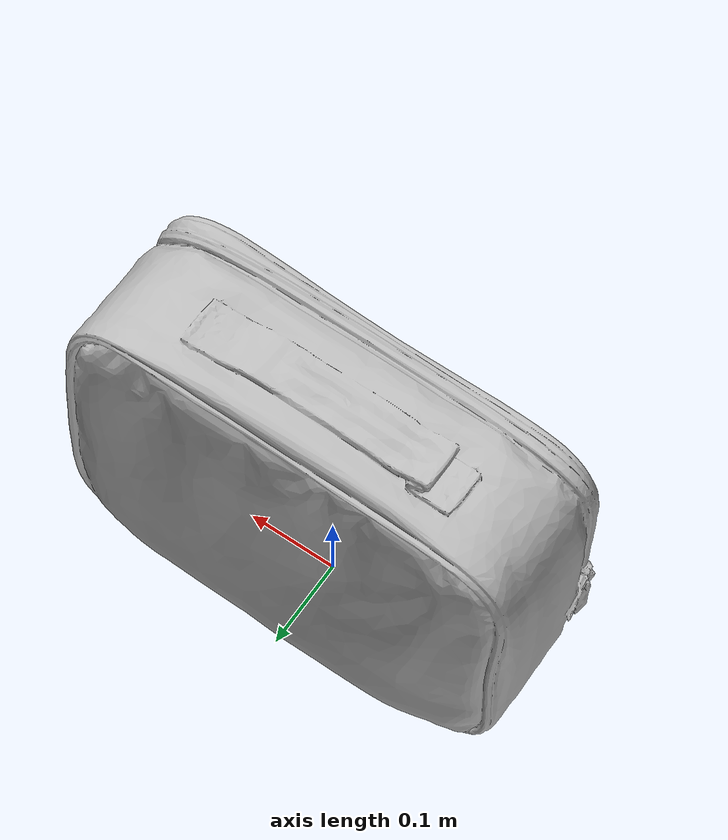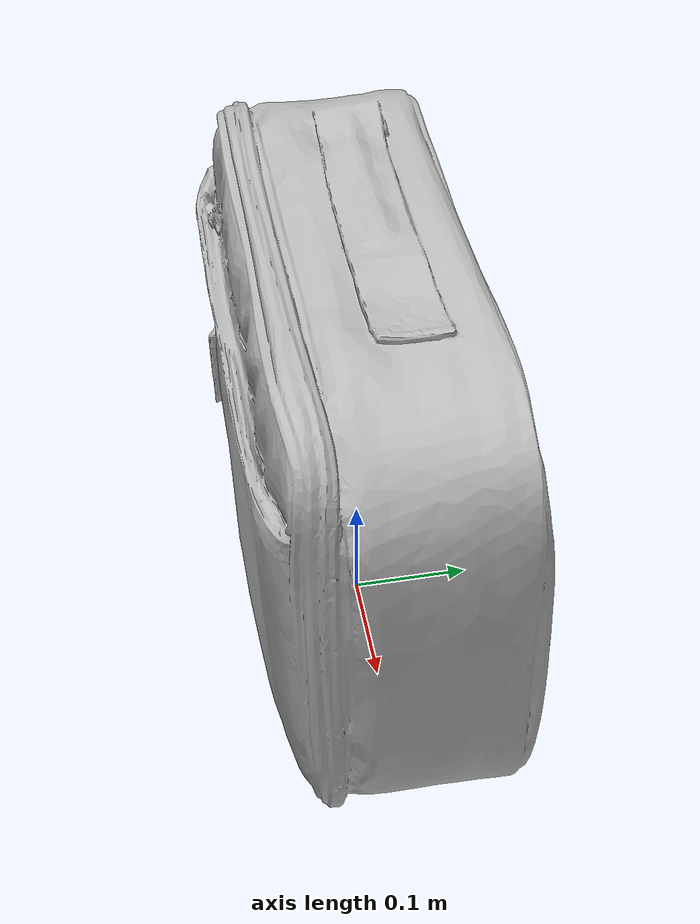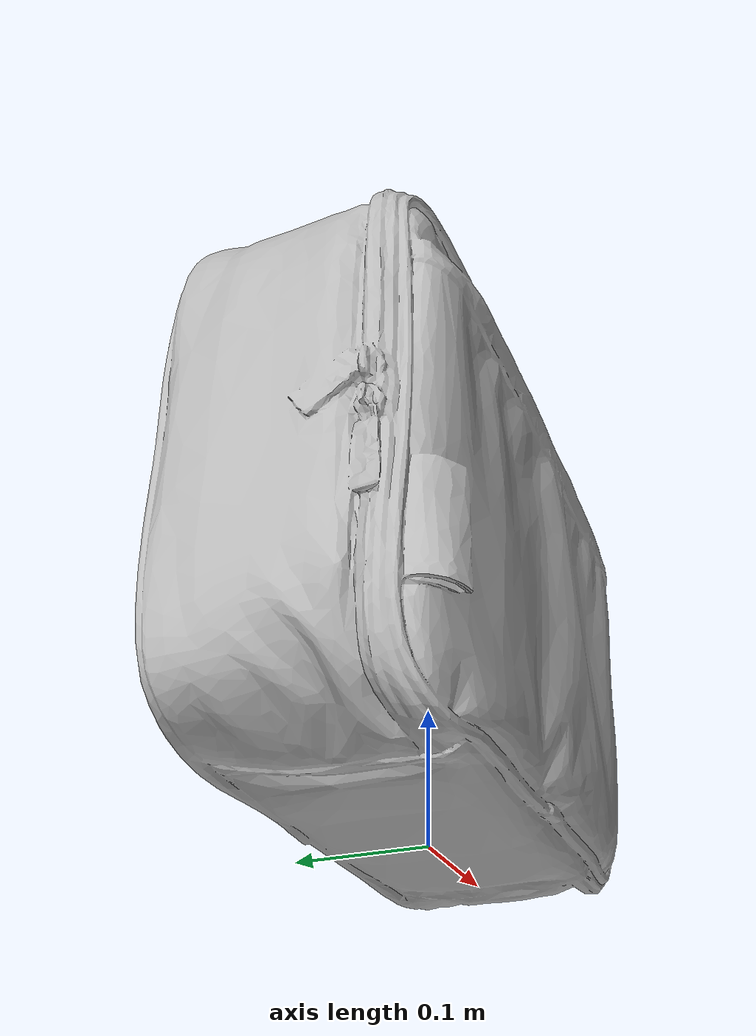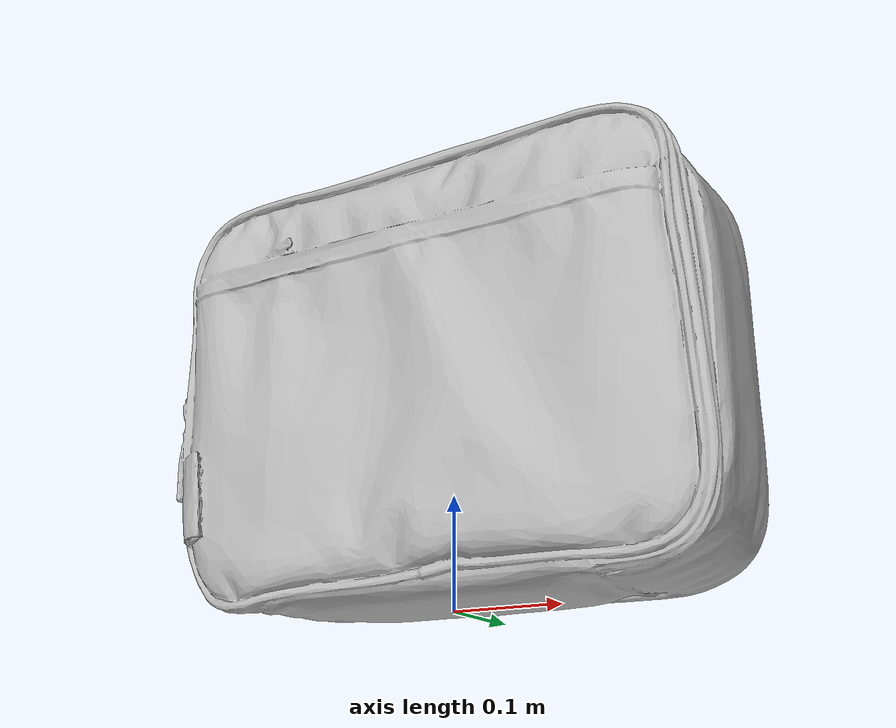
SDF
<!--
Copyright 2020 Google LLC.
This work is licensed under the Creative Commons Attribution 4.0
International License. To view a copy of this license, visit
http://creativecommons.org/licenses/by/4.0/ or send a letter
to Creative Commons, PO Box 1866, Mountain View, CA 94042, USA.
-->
<?xml version="1.0" ?>
<sdf version="1.6">
  <model name="ACE_Coffee_Mug_Kristen_16_oz_cup">
    <link name="link_0">
      <visual name="visual">
        <geometry>
          <mesh>
            <uri>meshes/model.obj</uri>
            <scale>2 2 2</scale>
          </mesh>
        </geometry>
      </visual>
      <collision name="collision_0">
        <geometry>
          <mesh>
            <uri>meshes/model.obj</uri>
            <scale>2 2 2</scale>
          </mesh>
        </geometry>
      </collision>
    </link>
  </model>
</sdf>
